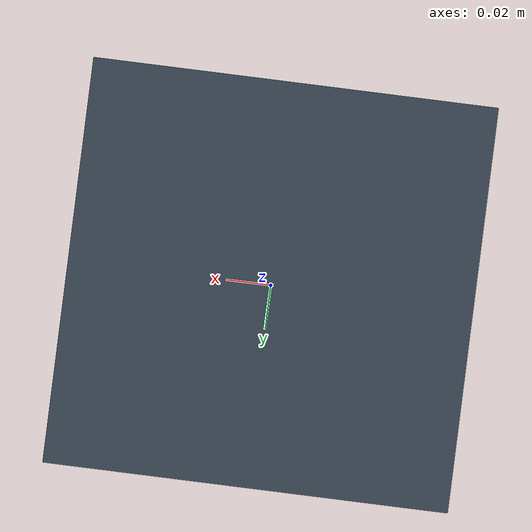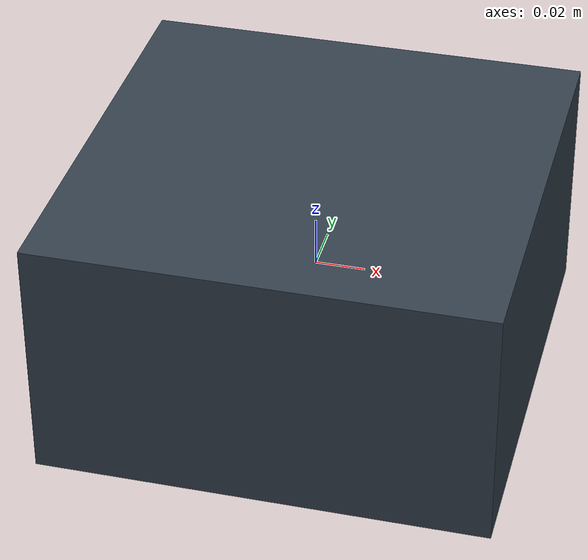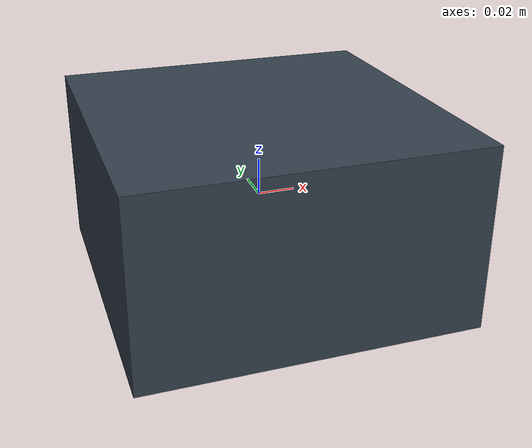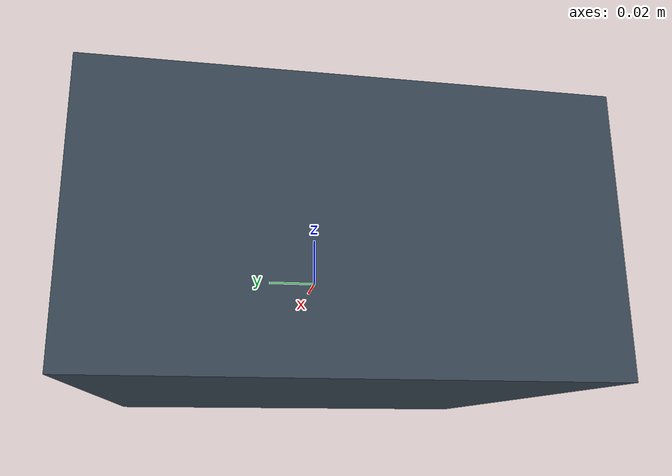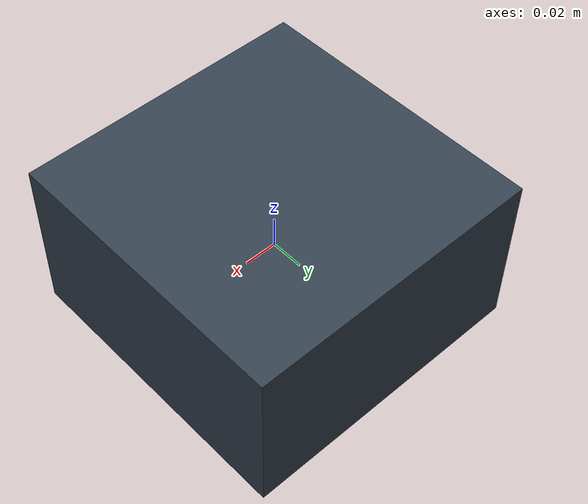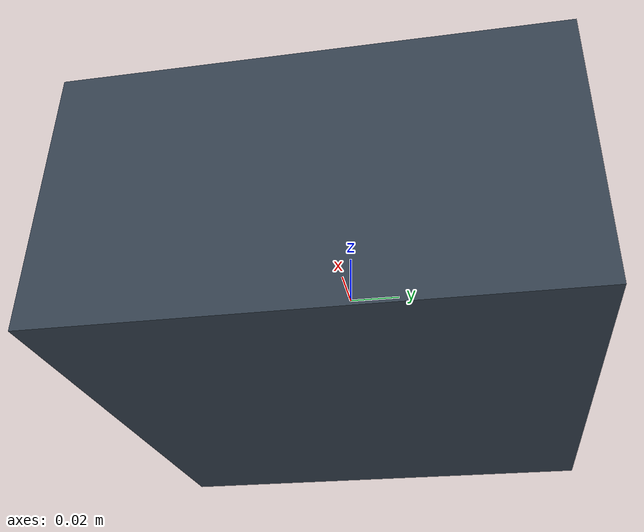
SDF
<?xml version="1.0"?>
<sdf version="1.7">
  <model name="demo_bin">
    <static>true</static>
    <link name="bin_link">
      <collision name="bin_collision">
        <geometry>
          <box>
            <size>0.18 0.18 0.1</size>
          </box>
        </geometry>
      </collision>
      <visual name="bin_visual">
        <geometry>
          <box>
            <size>0.18 0.18 0.1</size>
          </box>
        </geometry>
        <material>
          <ambient>0.2 0.25 0.3 1</ambient>
          <diffuse>0.2 0.25 0.3 1</diffuse>
        </material>
      </visual>
    </link>
  </model>
</sdf>
